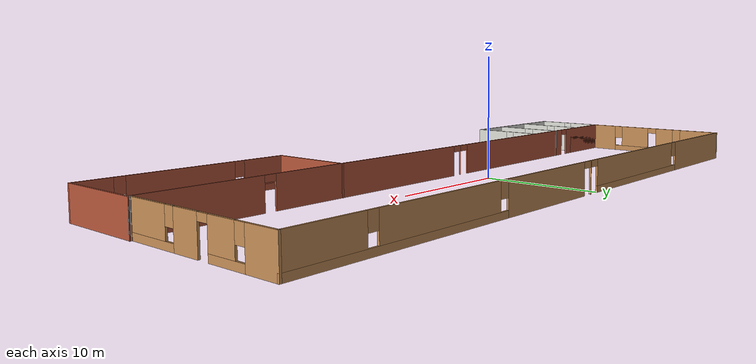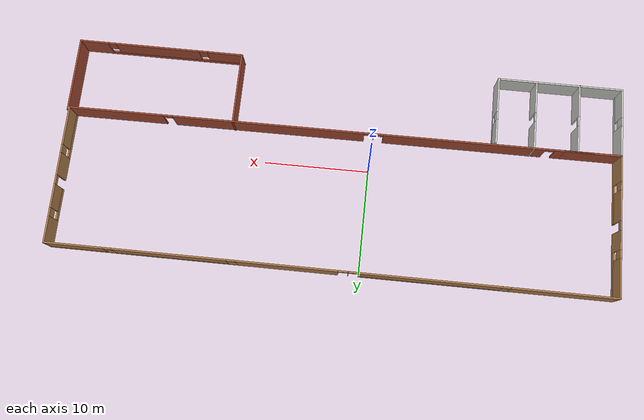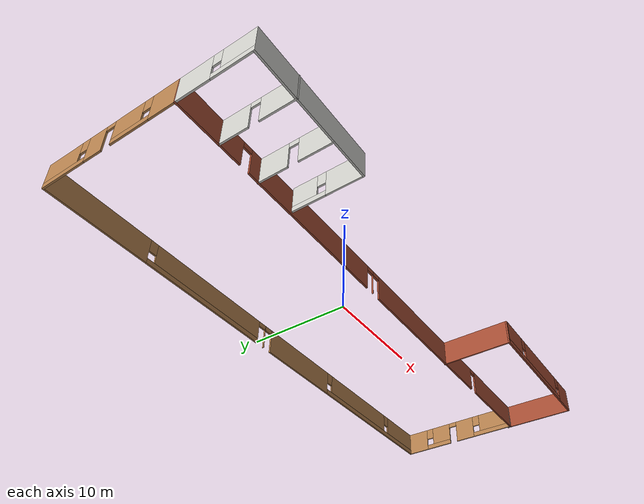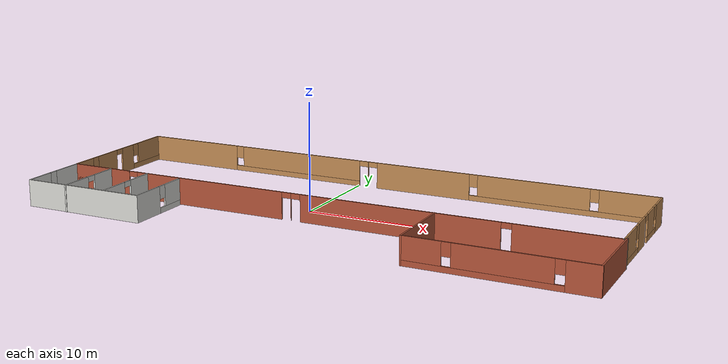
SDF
<?xml version='1.0'?>
<sdf version='1.7'>
  <model name='restaurant'>
    <pose>2.79043 0.081563 0 0 -0 0</pose>
    <link name='Wall_10'>
      <collision name='Wall_10_Collision'>
        <geometry>
          <box>
            <size>12 0.15 2.5</size>
          </box>
        </geometry>
        <pose>0 0 1.25 0 -0 0</pose>
      </collision>
      <visual name='Wall_10_Visual'>
        <pose>0 0 1.25 0 -0 0</pose>
        <geometry>
          <box>
            <size>12 0.15 2.5</size>
          </box>
        </geometry>
        <material>
          <script>
            <uri>file://media/materials/scripts/gazebo.material</uri>
            <name>Gazebo/CeilingTiled</name>
          </script>
          <ambient>1 0.764706 0.305882 1</ambient>
        </material>
        <meta>
          <layer>0</layer>
        </meta>
      </visual>
      <pose>-20.4579 -9.95516 0 0 -0 0</pose>
    </link>
    <link name='Wall_11'>
      <pose>-14.5329 -6.78016 0 0 -0 1.5708</pose>
      <visual name='Wall_11_Visual_0'>
        <pose>-1.5565 0 1.25 0 -0 0</pose>
        <geometry>
          <box>
            <size>3.38699 0.15 2.5</size>
          </box>
        </geometry>
        <material>
          <script>
            <uri>file://media/materials/scripts/gazebo.material</uri>
            <name>Gazebo/CeilingTiled</name>
          </script>
          <ambient>1 0.764706 0.305882 1</ambient>
        </material>
        <meta>
          <layer>0</layer>
        </meta>
      </visual>
      <collision name='Wall_11_Collision_0'>
        <geometry>
          <box>
            <size>3.38699 0.15 2.5</size>
          </box>
        </geometry>
        <pose>-1.5565 0 1.25 0 -0 0</pose>
      </collision>
      <visual name='Wall_11_Visual_1'>
        <pose>1.6935 0 0.25 0 -0 0</pose>
        <geometry>
          <box>
            <size>3.11301 0.15 0.5</size>
          </box>
        </geometry>
        <material>
          <script>
            <uri>file://media/materials/scripts/gazebo.material</uri>
            <name>Gazebo/CeilingTiled</name>
          </script>
          <ambient>1 0.764706 0.305882 1</ambient>
        </material>
        <meta>
          <layer>0</layer>
        </meta>
      </visual>
      <collision name='Wall_11_Collision_1'>
        <geometry>
          <box>
            <size>3.11301 0.15 0.5</size>
          </box>
        </geometry>
        <pose>1.6935 0 0.25 0 -0 0</pose>
      </collision>
      <visual name='Wall_11_Visual_2'>
        <pose>2.0935 0 1.5 0 -0 0</pose>
        <geometry>
          <box>
            <size>2.31301 0.15 2</size>
          </box>
        </geometry>
        <material>
          <script>
            <uri>file://media/materials/scripts/gazebo.material</uri>
            <name>Gazebo/CeilingTiled</name>
          </script>
          <ambient>1 0.764706 0.305882 1</ambient>
        </material>
        <meta>
          <layer>0</layer>
        </meta>
      </visual>
      <collision name='Wall_11_Collision_2'>
        <geometry>
          <box>
            <size>2.31301 0.15 2</size>
          </box>
        </geometry>
        <pose>2.0935 0 1.5 0 -0 0</pose>
      </collision>
      <visual name='Wall_11_Visual_3'>
        <pose>0.536991 0 1.9 0 -0 0</pose>
        <geometry>
          <box>
            <size>0.8 0.15 1.2</size>
          </box>
        </geometry>
        <material>
          <script>
            <uri>file://media/materials/scripts/gazebo.material</uri>
            <name>Gazebo/CeilingTiled</name>
          </script>
          <ambient>1 0.764706 0.305882 1</ambient>
        </material>
        <meta>
          <layer>0</layer>
        </meta>
      </visual>
      <collision name='Wall_11_Collision_3'>
        <geometry>
          <box>
            <size>0.8 0.15 1.2</size>
          </box>
        </geometry>
        <pose>0.536991 0 1.9 0 -0 0</pose>
      </collision>
    </link>
    <link name='Wall_13'>
      <collision name='Wall_13_Collision'>
        <geometry>
          <box>
            <size>0.414926 0.15 2.5</size>
          </box>
        </geometry>
        <pose>0 0 1.25 0 -0 0</pose>
      </collision>
      <visual name='Wall_13_Visual'>
        <pose>0 0 1.25 0 -0 0</pose>
        <geometry>
          <box>
            <size>0.414926 0.15 2.5</size>
          </box>
        </geometry>
        <material>
          <script>
            <uri>file://media/materials/scripts/gazebo.material</uri>
            <name>Gazebo/Grey</name>
          </script>
          <ambient>1 1 1 1</ambient>
        </material>
        <meta>
          <layer>0</layer>
        </meta>
      </visual>
      <pose>26.2861 -2.99211 0 0 -0 1.02256</pose>
    </link>
    <link name='Wall_14'>
      <collision name='Wall_14_Collision'>
        <geometry>
          <box>
            <size>7.25 0.15 2.5</size>
          </box>
        </geometry>
        <pose>0 0 1.25 0 -0 0</pose>
      </collision>
      <visual name='Wall_14_Visual'>
        <pose>0 0 1.25 0 -0 0</pose>
        <geometry>
          <box>
            <size>7.25 0.15 2.5</size>
          </box>
        </geometry>
        <material>
          <script>
            <uri>file://media/materials/scripts/gazebo.material</uri>
            <name>Gazebo/Bricks</name>
          </script>
          <ambient>0.996078 0.47451 0.0196078 1</ambient>
        </material>
        <meta>
          <layer>0</layer>
        </meta>
      </visual>
      <pose>26.3552 -6.42906 0 0 -0 -1.5708</pose>
    </link>
    <link name='Wall_15'>
      <pose>18.4302 -9.97906 0 0 -0 3.14159</pose>
      <visual name='Wall_15_Visual_0'>
        <pose>-6.61611 0 1.25 0 -0 0</pose>
        <geometry>
          <box>
            <size>2.76777 0.15 2.5</size>
          </box>
        </geometry>
        <material>
          <script>
            <uri>file://media/materials/scripts/gazebo.material</uri>
            <name>Gazebo/Bricks</name>
          </script>
          <ambient>0.996078 0.47451 0.0196078 1</ambient>
        </material>
        <meta>
          <layer>0</layer>
        </meta>
      </visual>
      <collision name='Wall_15_Collision_0'>
        <geometry>
          <box>
            <size>2.76777 0.15 2.5</size>
          </box>
        </geometry>
        <pose>-6.61611 0 1.25 0 -0 0</pose>
      </collision>
      <visual name='Wall_15_Visual_1'>
        <pose>1.38389 0 0.25 0 -0 0</pose>
        <geometry>
          <box>
            <size>13.2322 0.15 0.5</size>
          </box>
        </geometry>
        <material>
          <script>
            <uri>file://media/materials/scripts/gazebo.material</uri>
            <name>Gazebo/Bricks</name>
          </script>
          <ambient>0.996078 0.47451 0.0196078 1</ambient>
        </material>
        <meta>
          <layer>0</layer>
        </meta>
      </visual>
      <collision name='Wall_15_Collision_1'>
        <geometry>
          <box>
            <size>13.2322 0.15 0.5</size>
          </box>
        </geometry>
        <pose>1.38389 0 0.25 0 -0 0</pose>
      </collision>
      <visual name='Wall_15_Visual_2'>
        <pose>-0.347226 0 1.5 0 -0 0</pose>
        <geometry>
          <box>
            <size>8.17 0.15 2</size>
          </box>
        </geometry>
        <material>
          <script>
            <uri>file://media/materials/scripts/gazebo.material</uri>
            <name>Gazebo/Bricks</name>
          </script>
          <ambient>0.996078 0.47451 0.0196078 1</ambient>
        </material>
        <meta>
          <layer>0</layer>
        </meta>
      </visual>
      <collision name='Wall_15_Collision_2'>
        <geometry>
          <box>
            <size>8.17 0.15 2</size>
          </box>
        </geometry>
        <pose>-0.347226 0 1.5 0 -0 0</pose>
      </collision>
      <visual name='Wall_15_Visual_3'>
        <pose>6.26889 0 1.5 0 -0 0</pose>
        <geometry>
          <box>
            <size>3.46223 0.15 2</size>
          </box>
        </geometry>
        <material>
          <script>
            <uri>file://media/materials/scripts/gazebo.material</uri>
            <name>Gazebo/Bricks</name>
          </script>
          <ambient>0.996078 0.47451 0.0196078 1</ambient>
        </material>
        <meta>
          <layer>0</layer>
        </meta>
      </visual>
      <collision name='Wall_15_Collision_3'>
        <geometry>
          <box>
            <size>3.46223 0.15 2</size>
          </box>
        </geometry>
        <pose>6.26889 0 1.5 0 -0 0</pose>
      </collision>
      <visual name='Wall_15_Visual_4'>
        <pose>-4.83223 0 1.9 0 -0 0</pose>
        <geometry>
          <box>
            <size>0.8 0.15 1.2</size>
          </box>
        </geometry>
        <material>
          <script>
            <uri>file://media/materials/scripts/gazebo.material</uri>
            <name>Gazebo/Bricks</name>
          </script>
          <ambient>0.996078 0.47451 0.0196078 1</ambient>
        </material>
        <meta>
          <layer>0</layer>
        </meta>
      </visual>
      <collision name='Wall_15_Collision_4'>
        <geometry>
          <box>
            <size>0.8 0.15 1.2</size>
          </box>
        </geometry>
        <pose>-4.83223 0 1.9 0 -0 0</pose>
      </collision>
      <visual name='Wall_15_Visual_5'>
        <pose>4.13777 0 1.9 0 -0 0</pose>
        <geometry>
          <box>
            <size>0.8 0.15 1.2</size>
          </box>
        </geometry>
        <material>
          <script>
            <uri>file://media/materials/scripts/gazebo.material</uri>
            <name>Gazebo/Bricks</name>
          </script>
          <ambient>0.996078 0.47451 0.0196078 1</ambient>
        </material>
        <meta>
          <layer>0</layer>
        </meta>
      </visual>
      <collision name='Wall_15_Collision_5'>
        <geometry>
          <box>
            <size>0.8 0.15 1.2</size>
          </box>
        </geometry>
        <pose>4.13777 0 1.9 0 -0 0</pose>
      </collision>
    </link>
    <link name='Wall_16'>
      <collision name='Wall_16_Collision'>
        <geometry>
          <box>
            <size>7 0.15 2.5</size>
          </box>
        </geometry>
        <pose>0 0 1.25 0 -0 0</pose>
      </collision>
      <visual name='Wall_16_Visual'>
        <pose>0 0 1.25 0 -0 0</pose>
        <geometry>
          <box>
            <size>7 0.15 2.5</size>
          </box>
        </geometry>
        <material>
          <script>
            <uri>file://media/materials/scripts/gazebo.material</uri>
            <name>Gazebo/Bricks</name>
          </script>
          <ambient>0.996078 0.47451 0.0196078 1</ambient>
        </material>
        <meta>
          <layer>0</layer>
        </meta>
      </visual>
      <pose>10.5052 -6.55406 0 0 -0 1.5708</pose>
    </link>
    <link name='Wall_18'>
      <pose>-18.1702 -6.57581 0 0 -0 -1.5708</pose>
      <visual name='Wall_18_Visual_0'>
        <pose>-1.9755 0 1.25 0 -0 0</pose>
        <geometry>
          <box>
            <size>2.799 0.15 2.5</size>
          </box>
        </geometry>
        <material>
          <script>
            <uri>file://media/materials/scripts/gazebo.material</uri>
            <name>Gazebo/CeilingTiled</name>
          </script>
          <ambient>1 0.764706 0.305882 1</ambient>
        </material>
        <meta>
          <layer>0</layer>
        </meta>
      </visual>
      <collision name='Wall_18_Collision_0'>
        <geometry>
          <box>
            <size>2.799 0.15 2.5</size>
          </box>
        </geometry>
        <pose>-1.9755 0 1.25 0 -0 0</pose>
      </collision>
      <visual name='Wall_18_Visual_1'>
        <pose>1.8495 0 1.25 0 -0 0</pose>
        <geometry>
          <box>
            <size>3.051 0.15 2.5</size>
          </box>
        </geometry>
        <material>
          <script>
            <uri>file://media/materials/scripts/gazebo.material</uri>
            <name>Gazebo/CeilingTiled</name>
          </script>
          <ambient>1 0.764706 0.305882 1</ambient>
        </material>
        <meta>
          <layer>0</layer>
        </meta>
      </visual>
      <collision name='Wall_18_Collision_1'>
        <geometry>
          <box>
            <size>3.051 0.15 2.5</size>
          </box>
        </geometry>
        <pose>1.8495 0 1.25 0 -0 0</pose>
      </collision>
      <visual name='Wall_18_Visual_2'>
        <pose>-0.126 0 2.25 0 -0 0</pose>
        <geometry>
          <box>
            <size>0.9 0.15 0.5</size>
          </box>
        </geometry>
        <material>
          <script>
            <uri>file://media/materials/scripts/gazebo.material</uri>
            <name>Gazebo/CeilingTiled</name>
          </script>
          <ambient>1 0.764706 0.305882 1</ambient>
        </material>
        <meta>
          <layer>0</layer>
        </meta>
      </visual>
      <collision name='Wall_18_Collision_2'>
        <geometry>
          <box>
            <size>0.9 0.15 0.5</size>
          </box>
        </geometry>
        <pose>-0.126 0 2.25 0 -0 0</pose>
      </collision>
    </link>
    <link name='Wall_22'>
      <pose>-22.2964 -6.69484 0 0 -0 -1.5708</pose>
      <visual name='Wall_22_Visual_0'>
        <pose>-2.05485 0 1.25 0 -0 0</pose>
        <geometry>
          <box>
            <size>2.6403 0.15 2.5</size>
          </box>
        </geometry>
        <material>
          <script>
            <uri>file://media/materials/scripts/gazebo.material</uri>
            <name>Gazebo/CeilingTiled</name>
          </script>
          <ambient>1 0.764706 0.305882 1</ambient>
        </material>
        <meta>
          <layer>0</layer>
        </meta>
      </visual>
      <collision name='Wall_22_Collision_0'>
        <geometry>
          <box>
            <size>2.6403 0.15 2.5</size>
          </box>
        </geometry>
        <pose>-2.05485 0 1.25 0 -0 0</pose>
      </collision>
      <visual name='Wall_22_Visual_1'>
        <pose>1.77015 0 1.25 0 -0 0</pose>
        <geometry>
          <box>
            <size>3.2097 0.15 2.5</size>
          </box>
        </geometry>
        <material>
          <script>
            <uri>file://media/materials/scripts/gazebo.material</uri>
            <name>Gazebo/CeilingTiled</name>
          </script>
          <ambient>1 0.764706 0.305882 1</ambient>
        </material>
        <meta>
          <layer>0</layer>
        </meta>
      </visual>
      <collision name='Wall_22_Collision_1'>
        <geometry>
          <box>
            <size>3.2097 0.15 2.5</size>
          </box>
        </geometry>
        <pose>1.77015 0 1.25 0 -0 0</pose>
      </collision>
      <visual name='Wall_22_Visual_2'>
        <pose>-0.2847 0 2.25 0 -0 0</pose>
        <geometry>
          <box>
            <size>0.9 0.15 0.5</size>
          </box>
        </geometry>
        <material>
          <script>
            <uri>file://media/materials/scripts/gazebo.material</uri>
            <name>Gazebo/CeilingTiled</name>
          </script>
          <ambient>1 0.764706 0.305882 1</ambient>
        </material>
        <meta>
          <layer>0</layer>
        </meta>
      </visual>
      <collision name='Wall_22_Collision_2'>
        <geometry>
          <box>
            <size>0.9 0.15 0.5</size>
          </box>
        </geometry>
        <pose>-0.2847 0 2.25 0 -0 0</pose>
      </collision>
    </link>
    <link name='Wall_5'>
      <pose>-26.3829 3.31984 0 0 -0 1.5708</pose>
      <visual name='Wall_5_Visual_0'>
        <pose>-5.4842 0 1.25 0 -0 0</pose>
        <geometry>
          <box>
            <size>2.5316 0.15 2.5</size>
          </box>
        </geometry>
        <material>
          <script>
            <uri>file://media/materials/scripts/gazebo.material</uri>
            <name>Gazebo/Wood</name>
          </script>
          <ambient>0.760784 0.662745 0.627451 1</ambient>
        </material>
        <meta>
          <layer>0</layer>
        </meta>
      </visual>
      <collision name='Wall_5_Collision_0'>
        <geometry>
          <box>
            <size>2.5316 0.15 2.5</size>
          </box>
        </geometry>
        <pose>-5.4842 0 1.25 0 -0 0</pose>
      </collision>
      <visual name='Wall_5_Visual_1'>
        <pose>1.30897 0 1.25 0 -0 0</pose>
        <geometry>
          <box>
            <size>1.79996 0.15 2.5</size>
          </box>
        </geometry>
        <material>
          <script>
            <uri>file://media/materials/scripts/gazebo.material</uri>
            <name>Gazebo/Wood</name>
          </script>
          <ambient>0.760784 0.662745 0.627451 1</ambient>
        </material>
        <meta>
          <layer>0</layer>
        </meta>
      </visual>
      <collision name='Wall_5_Collision_1'>
        <geometry>
          <box>
            <size>1.79996 0.15 2.5</size>
          </box>
        </geometry>
        <pose>1.30897 0 1.25 0 -0 0</pose>
      </collision>
      <visual name='Wall_5_Visual_2'>
        <pose>-2.3547 0 0.25 0 -0 0</pose>
        <geometry>
          <box>
            <size>3.72739 0.15 0.5</size>
          </box>
        </geometry>
        <material>
          <script>
            <uri>file://media/materials/scripts/gazebo.material</uri>
            <name>Gazebo/Wood</name>
          </script>
          <ambient>0.760784 0.662745 0.627451 1</ambient>
        </material>
        <meta>
          <layer>0</layer>
        </meta>
      </visual>
      <collision name='Wall_5_Collision_2'>
        <geometry>
          <box>
            <size>3.72739 0.15 0.5</size>
          </box>
        </geometry>
        <pose>-2.3547 0 0.25 0 -0 0</pose>
      </collision>
      <visual name='Wall_5_Visual_3'>
        <pose>4.47947 0 0.25 0 -0 0</pose>
        <geometry>
          <box>
            <size>4.54105 0.15 0.5</size>
          </box>
        </geometry>
        <material>
          <script>
            <uri>file://media/materials/scripts/gazebo.material</uri>
            <name>Gazebo/Wood</name>
          </script>
          <ambient>0.760784 0.662745 0.627451 1</ambient>
        </material>
        <meta>
          <layer>0</layer>
        </meta>
      </visual>
      <collision name='Wall_5_Collision_3'>
        <geometry>
          <box>
            <size>4.54105 0.15 0.5</size>
          </box>
        </geometry>
        <pose>4.47947 0 0.25 0 -0 0</pose>
      </collision>
      <visual name='Wall_5_Visual_4'>
        <pose>-1.9547 0 1.5 0 -0 0</pose>
        <geometry>
          <box>
            <size>2.92739 0.15 2</size>
          </box>
        </geometry>
        <material>
          <script>
            <uri>file://media/materials/scripts/gazebo.material</uri>
            <name>Gazebo/Wood</name>
          </script>
          <ambient>0.760784 0.662745 0.627451 1</ambient>
        </material>
        <meta>
          <layer>0</layer>
        </meta>
      </visual>
      <collision name='Wall_5_Collision_4'>
        <geometry>
          <box>
            <size>2.92739 0.15 2</size>
          </box>
        </geometry>
        <pose>-1.9547 0 1.5 0 -0 0</pose>
      </collision>
      <visual name='Wall_5_Visual_5'>
        <pose>-1.9547 0 1.5 0 -0 0</pose>
        <geometry>
          <box>
            <size>2.92739 0.15 2</size>
          </box>
        </geometry>
        <material>
          <script>
            <uri>file://media/materials/scripts/gazebo.material</uri>
            <name>Gazebo/Wood</name>
          </script>
          <ambient>0.760784 0.662745 0.627451 1</ambient>
        </material>
        <meta>
          <layer>0</layer>
        </meta>
      </visual>
      <collision name='Wall_5_Collision_5'>
        <geometry>
          <box>
            <size>2.92739 0.15 2</size>
          </box>
        </geometry>
        <pose>-1.9547 0 1.5 0 -0 0</pose>
      </collision>
      <visual name='Wall_5_Visual_6'>
        <pose>4.87948 0 1.5 0 -0 0</pose>
        <geometry>
          <box>
            <size>3.74105 0.15 2</size>
          </box>
        </geometry>
        <material>
          <script>
            <uri>file://media/materials/scripts/gazebo.material</uri>
            <name>Gazebo/Wood</name>
          </script>
          <ambient>0.760784 0.662745 0.627451 1</ambient>
        </material>
        <meta>
          <layer>0</layer>
        </meta>
      </visual>
      <collision name='Wall_5_Collision_6'>
        <geometry>
          <box>
            <size>3.74105 0.15 2</size>
          </box>
        </geometry>
        <pose>4.87948 0 1.5 0 -0 0</pose>
      </collision>
      <visual name='Wall_5_Visual_7'>
        <pose>-3.8184 0 1.9 0 -0 0</pose>
        <geometry>
          <box>
            <size>0.8 0.15 1.2</size>
          </box>
        </geometry>
        <material>
          <script>
            <uri>file://media/materials/scripts/gazebo.material</uri>
            <name>Gazebo/Wood</name>
          </script>
          <ambient>0.760784 0.662745 0.627451 1</ambient>
        </material>
        <meta>
          <layer>0</layer>
        </meta>
      </visual>
      <collision name='Wall_5_Collision_7'>
        <geometry>
          <box>
            <size>0.8 0.15 1.2</size>
          </box>
        </geometry>
        <pose>-3.8184 0 1.9 0 -0 0</pose>
      </collision>
      <visual name='Wall_5_Visual_8'>
        <pose>2.60895 0 1.9 0 -0 0</pose>
        <geometry>
          <box>
            <size>0.8 0.15 1.2</size>
          </box>
        </geometry>
        <material>
          <script>
            <uri>file://media/materials/scripts/gazebo.material</uri>
            <name>Gazebo/Wood</name>
          </script>
          <ambient>0.760784 0.662745 0.627451 1</ambient>
        </material>
        <meta>
          <layer>0</layer>
        </meta>
      </visual>
      <collision name='Wall_5_Collision_8'>
        <geometry>
          <box>
            <size>0.8 0.15 1.2</size>
          </box>
        </geometry>
        <pose>2.60895 0 1.9 0 -0 0</pose>
      </collision>
      <visual name='Wall_5_Visual_9'>
        <pose>-0.041009 0 2.25 0 -0 0</pose>
        <geometry>
          <box>
            <size>0.9 0.15 0.5</size>
          </box>
        </geometry>
        <material>
          <script>
            <uri>file://media/materials/scripts/gazebo.material</uri>
            <name>Gazebo/Wood</name>
          </script>
          <ambient>0.760784 0.662745 0.627451 1</ambient>
        </material>
        <meta>
          <layer>0</layer>
        </meta>
      </visual>
      <collision name='Wall_5_Collision_9'>
        <geometry>
          <box>
            <size>0.9 0.15 0.5</size>
          </box>
        </geometry>
        <pose>-0.041009 0 2.25 0 -0 0</pose>
      </collision>
      <visual name='Wall_5_Visual_10'>
        <pose>-0.041009 0 2.25 0 -0 0</pose>
        <geometry>
          <box>
            <size>0.9 0.15 0.5</size>
          </box>
        </geometry>
        <material>
          <script>
            <uri>file://media/materials/scripts/gazebo.material</uri>
            <name>Gazebo/Wood</name>
          </script>
          <ambient>0.760784 0.662745 0.627451 1</ambient>
        </material>
        <meta>
          <layer>0</layer>
        </meta>
      </visual>
      <collision name='Wall_5_Collision_10'>
        <geometry>
          <box>
            <size>0.9 0.15 0.5</size>
          </box>
        </geometry>
        <pose>-0.041009 0 2.25 0 -0 0</pose>
      </collision>
    </link>
    <link name='Wall_6'>
      <pose>-0.082907 9.99484 0 0 -0 0</pose>
      <visual name='Wall_6_Visual_0'>
        <pose>-21.4488 0 1.25 0 -0 0</pose>
        <geometry>
          <box>
            <size>9.8523 0.15 2.5</size>
          </box>
        </geometry>
        <material>
          <script>
            <uri>file://media/materials/scripts/gazebo.material</uri>
            <name>Gazebo/Wood</name>
          </script>
          <ambient>0.760784 0.662745 0.627451 1</ambient>
        </material>
        <meta>
          <layer>0</layer>
        </meta>
      </visual>
      <collision name='Wall_6_Collision_0'>
        <geometry>
          <box>
            <size>9.8523 0.15 2.5</size>
          </box>
        </geometry>
        <pose>-21.4488 0 1.25 0 -0 0</pose>
      </collision>
      <visual name='Wall_6_Visual_1'>
        <pose>-1.7017 0 1.25 0 -0 0</pose>
        <geometry>
          <box>
            <size>0.066 0.15 2.5</size>
          </box>
        </geometry>
        <material>
          <script>
            <uri>file://media/materials/scripts/gazebo.material</uri>
            <name>Gazebo/Wood</name>
          </script>
          <ambient>0.760784 0.662745 0.627451 1</ambient>
        </material>
        <meta>
          <layer>0</layer>
        </meta>
      </visual>
      <collision name='Wall_6_Collision_1'>
        <geometry>
          <box>
            <size>0.066 0.15 2.5</size>
          </box>
        </geometry>
        <pose>-1.7017 0 1.25 0 -0 0</pose>
      </collision>
      <visual name='Wall_6_Visual_2'>
        <pose>3.9468 0 1.25 0 -0 0</pose>
        <geometry>
          <box>
            <size>9.431 0.15 2.5</size>
          </box>
        </geometry>
        <material>
          <script>
            <uri>file://media/materials/scripts/gazebo.material</uri>
            <name>Gazebo/Wood</name>
          </script>
          <ambient>0.760784 0.662745 0.627451 1</ambient>
        </material>
        <meta>
          <layer>0</layer>
        </meta>
      </visual>
      <collision name='Wall_6_Collision_2'>
        <geometry>
          <box>
            <size>9.431 0.15 2.5</size>
          </box>
        </geometry>
        <pose>3.9468 0 1.25 0 -0 0</pose>
      </collision>
      <visual name='Wall_6_Visual_3'>
        <pose>-9.5787 0 0.25 0 -0 0</pose>
        <geometry>
          <box>
            <size>13.888 0.15 0.5</size>
          </box>
        </geometry>
        <material>
          <script>
            <uri>file://media/materials/scripts/gazebo.material</uri>
            <name>Gazebo/Wood</name>
          </script>
          <ambient>0.760784 0.662745 0.627451 1</ambient>
        </material>
        <meta>
          <layer>0</layer>
        </meta>
      </visual>
      <collision name='Wall_6_Collision_3'>
        <geometry>
          <box>
            <size>13.888 0.15 0.5</size>
          </box>
        </geometry>
        <pose>-9.5787 0 0.25 0 -0 0</pose>
      </collision>
      <visual name='Wall_6_Visual_4'>
        <pose>17.5187 0 0.25 0 -0 0</pose>
        <geometry>
          <box>
            <size>17.7127 0.15 0.5</size>
          </box>
        </geometry>
        <material>
          <script>
            <uri>file://media/materials/scripts/gazebo.material</uri>
            <name>Gazebo/Wood</name>
          </script>
          <ambient>0.760784 0.662745 0.627451 1</ambient>
        </material>
        <meta>
          <layer>0</layer>
        </meta>
      </visual>
      <collision name='Wall_6_Collision_4'>
        <geometry>
          <box>
            <size>17.7127 0.15 0.5</size>
          </box>
        </geometry>
        <pose>17.5187 0 0.25 0 -0 0</pose>
      </collision>
      <visual name='Wall_6_Visual_5'>
        <pose>-9.1787 0 1.5 0 -0 0</pose>
        <geometry>
          <box>
            <size>13.088 0.15 2</size>
          </box>
        </geometry>
        <material>
          <script>
            <uri>file://media/materials/scripts/gazebo.material</uri>
            <name>Gazebo/Wood</name>
          </script>
          <ambient>0.760784 0.662745 0.627451 1</ambient>
        </material>
        <meta>
          <layer>0</layer>
        </meta>
      </visual>
      <collision name='Wall_6_Collision_5'>
        <geometry>
          <box>
            <size>13.088 0.15 2</size>
          </box>
        </geometry>
        <pose>-9.1787 0 1.5 0 -0 0</pose>
      </collision>
      <visual name='Wall_6_Visual_6'>
        <pose>-9.1787 0 1.5 0 -0 0</pose>
        <geometry>
          <box>
            <size>13.088 0.15 2</size>
          </box>
        </geometry>
        <material>
          <script>
            <uri>file://media/materials/scripts/gazebo.material</uri>
            <name>Gazebo/Wood</name>
          </script>
          <ambient>0.760784 0.662745 0.627451 1</ambient>
        </material>
        <meta>
          <layer>0</layer>
        </meta>
      </visual>
      <collision name='Wall_6_Collision_6'>
        <geometry>
          <box>
            <size>13.088 0.15 2</size>
          </box>
        </geometry>
        <pose>-9.1787 0 1.5 0 -0 0</pose>
      </collision>
      <visual name='Wall_6_Visual_7'>
        <pose>14.7548 0 1.5 0 -0 0</pose>
        <geometry>
          <box>
            <size>10.585 0.15 2</size>
          </box>
        </geometry>
        <material>
          <script>
            <uri>file://media/materials/scripts/gazebo.material</uri>
            <name>Gazebo/Wood</name>
          </script>
          <ambient>0.760784 0.662745 0.627451 1</ambient>
        </material>
        <meta>
          <layer>0</layer>
        </meta>
      </visual>
      <collision name='Wall_6_Collision_7'>
        <geometry>
          <box>
            <size>10.585 0.15 2</size>
          </box>
        </geometry>
        <pose>14.7548 0 1.5 0 -0 0</pose>
      </collision>
      <visual name='Wall_6_Visual_8'>
        <pose>23.6111 0 1.5 0 -0 0</pose>
        <geometry>
          <box>
            <size>5.5277 0.15 2</size>
          </box>
        </geometry>
        <material>
          <script>
            <uri>file://media/materials/scripts/gazebo.material</uri>
            <name>Gazebo/Wood</name>
          </script>
          <ambient>0.760784 0.662745 0.627451 1</ambient>
        </material>
        <meta>
          <layer>0</layer>
        </meta>
      </visual>
      <collision name='Wall_6_Collision_8'>
        <geometry>
          <box>
            <size>5.5277 0.15 2</size>
          </box>
        </geometry>
        <pose>23.6111 0 1.5 0 -0 0</pose>
      </collision>
      <visual name='Wall_6_Visual_9'>
        <pose>-16.1227 0 1.9 0 -0 0</pose>
        <geometry>
          <box>
            <size>0.8 0.15 1.2</size>
          </box>
        </geometry>
        <material>
          <script>
            <uri>file://media/materials/scripts/gazebo.material</uri>
            <name>Gazebo/Wood</name>
          </script>
          <ambient>0.760784 0.662745 0.627451 1</ambient>
        </material>
        <meta>
          <layer>0</layer>
        </meta>
      </visual>
      <collision name='Wall_6_Collision_9'>
        <geometry>
          <box>
            <size>0.8 0.15 1.2</size>
          </box>
        </geometry>
        <pose>-16.1227 0 1.9 0 -0 0</pose>
      </collision>
      <visual name='Wall_6_Visual_10'>
        <pose>9.0623 0 1.9 0 -0 0</pose>
        <geometry>
          <box>
            <size>0.8 0.15 1.2</size>
          </box>
        </geometry>
        <material>
          <script>
            <uri>file://media/materials/scripts/gazebo.material</uri>
            <name>Gazebo/Wood</name>
          </script>
          <ambient>0.760784 0.662745 0.627451 1</ambient>
        </material>
        <meta>
          <layer>0</layer>
        </meta>
      </visual>
      <collision name='Wall_6_Collision_10'>
        <geometry>
          <box>
            <size>0.8 0.15 1.2</size>
          </box>
        </geometry>
        <pose>9.0623 0 1.9 0 -0 0</pose>
      </collision>
      <visual name='Wall_6_Visual_11'>
        <pose>20.4473 0 1.9 0 -0 0</pose>
        <geometry>
          <box>
            <size>0.8 0.15 1.2</size>
          </box>
        </geometry>
        <material>
          <script>
            <uri>file://media/materials/scripts/gazebo.material</uri>
            <name>Gazebo/Wood</name>
          </script>
          <ambient>0.760784 0.662745 0.627451 1</ambient>
        </material>
        <meta>
          <layer>0</layer>
        </meta>
      </visual>
      <collision name='Wall_6_Collision_11'>
        <geometry>
          <box>
            <size>0.8 0.15 1.2</size>
          </box>
        </geometry>
        <pose>20.4473 0 1.9 0 -0 0</pose>
      </collision>
      <visual name='Wall_6_Visual_12'>
        <pose>-1.2187 0 2.25 0 -0 0</pose>
        <geometry>
          <box>
            <size>0.9 0.15 0.5</size>
          </box>
        </geometry>
        <material>
          <script>
            <uri>file://media/materials/scripts/gazebo.material</uri>
            <name>Gazebo/Wood</name>
          </script>
          <ambient>0.760784 0.662745 0.627451 1</ambient>
        </material>
        <meta>
          <layer>0</layer>
        </meta>
      </visual>
      <collision name='Wall_6_Collision_12'>
        <geometry>
          <box>
            <size>0.9 0.15 0.5</size>
          </box>
        </geometry>
        <pose>-1.2187 0 2.25 0 -0 0</pose>
      </collision>
      <visual name='Wall_6_Visual_13'>
        <pose>-2.1847 0 2.25 0 -0 0</pose>
        <geometry>
          <box>
            <size>0.9 0.15 0.5</size>
          </box>
        </geometry>
        <material>
          <script>
            <uri>file://media/materials/scripts/gazebo.material</uri>
            <name>Gazebo/Wood</name>
          </script>
          <ambient>0.760784 0.662745 0.627451 1</ambient>
        </material>
        <meta>
          <layer>0</layer>
        </meta>
      </visual>
      <collision name='Wall_6_Collision_13'>
        <geometry>
          <box>
            <size>0.9 0.15 0.5</size>
          </box>
        </geometry>
        <pose>-2.1847 0 2.25 0 -0 0</pose>
      </collision>
      <visual name='Wall_6_Visual_14'>
        <pose>-2.1847 0 2.25 0 -0 0</pose>
        <geometry>
          <box>
            <size>0.9 0.15 0.5</size>
          </box>
        </geometry>
        <material>
          <script>
            <uri>file://media/materials/scripts/gazebo.material</uri>
            <name>Gazebo/Wood</name>
          </script>
          <ambient>0.760784 0.662745 0.627451 1</ambient>
        </material>
        <meta>
          <layer>0</layer>
        </meta>
      </visual>
      <collision name='Wall_6_Collision_14'>
        <geometry>
          <box>
            <size>0.9 0.15 0.5</size>
          </box>
        </geometry>
        <pose>-2.1847 0 2.25 0 -0 0</pose>
      </collision>
    </link>
    <link name='Wall_7'>
      <pose>26.2171 3.44484 0 0 -0 -1.5708</pose>
      <visual name='Wall_7_Visual_0'>
        <pose>-5.3615 0 1.25 0 -0 0</pose>
        <geometry>
          <box>
            <size>2.52701 0.15 2.5</size>
          </box>
        </geometry>
        <material>
          <script>
            <uri>file://media/materials/scripts/gazebo.material</uri>
            <name>Gazebo/Wood</name>
          </script>
          <ambient>0.760784 0.662745 0.627451 1</ambient>
        </material>
        <meta>
          <layer>0</layer>
        </meta>
      </visual>
      <collision name='Wall_7_Collision_0'>
        <geometry>
          <box>
            <size>2.52701 0.15 2.5</size>
          </box>
        </geometry>
        <pose>-5.3615 0 1.25 0 -0 0</pose>
      </collision>
      <visual name='Wall_7_Visual_1'>
        <pose>0.950009 0 1.25 0 -0 0</pose>
        <geometry>
          <box>
            <size>2.186 0.15 2.5</size>
          </box>
        </geometry>
        <material>
          <script>
            <uri>file://media/materials/scripts/gazebo.material</uri>
            <name>Gazebo/Wood</name>
          </script>
          <ambient>0.760784 0.662745 0.627451 1</ambient>
        </material>
        <meta>
          <layer>0</layer>
        </meta>
      </visual>
      <collision name='Wall_7_Collision_1'>
        <geometry>
          <box>
            <size>2.186 0.15 2.5</size>
          </box>
        </geometry>
        <pose>0.950009 0 1.25 0 -0 0</pose>
      </collision>
      <visual name='Wall_7_Visual_2'>
        <pose>-2.57049 0 0.25 0 -0 0</pose>
        <geometry>
          <box>
            <size>3.055 0.15 0.5</size>
          </box>
        </geometry>
        <material>
          <script>
            <uri>file://media/materials/scripts/gazebo.material</uri>
            <name>Gazebo/Wood</name>
          </script>
          <ambient>0.760784 0.662745 0.627451 1</ambient>
        </material>
        <meta>
          <layer>0</layer>
        </meta>
      </visual>
      <collision name='Wall_7_Collision_2'>
        <geometry>
          <box>
            <size>3.055 0.15 0.5</size>
          </box>
        </geometry>
        <pose>-2.57049 0 0.25 0 -0 0</pose>
      </collision>
      <visual name='Wall_7_Visual_3'>
        <pose>4.334 0 0.25 0 -0 0</pose>
        <geometry>
          <box>
            <size>4.58199 0.15 0.5</size>
          </box>
        </geometry>
        <material>
          <script>
            <uri>file://media/materials/scripts/gazebo.material</uri>
            <name>Gazebo/Wood</name>
          </script>
          <ambient>0.760784 0.662745 0.627451 1</ambient>
        </material>
        <meta>
          <layer>0</layer>
        </meta>
      </visual>
      <collision name='Wall_7_Collision_3'>
        <geometry>
          <box>
            <size>4.58199 0.15 0.5</size>
          </box>
        </geometry>
        <pose>4.334 0 0.25 0 -0 0</pose>
      </collision>
      <visual name='Wall_7_Visual_4'>
        <pose>-2.17049 0 1.5 0 -0 0</pose>
        <geometry>
          <box>
            <size>2.255 0.15 2</size>
          </box>
        </geometry>
        <material>
          <script>
            <uri>file://media/materials/scripts/gazebo.material</uri>
            <name>Gazebo/Wood</name>
          </script>
          <ambient>0.760784 0.662745 0.627451 1</ambient>
        </material>
        <meta>
          <layer>0</layer>
        </meta>
      </visual>
      <collision name='Wall_7_Collision_4'>
        <geometry>
          <box>
            <size>2.255 0.15 2</size>
          </box>
        </geometry>
        <pose>-2.17049 0 1.5 0 -0 0</pose>
      </collision>
      <visual name='Wall_7_Visual_5'>
        <pose>-2.17049 0 1.5 0 -0 0</pose>
        <geometry>
          <box>
            <size>2.255 0.15 2</size>
          </box>
        </geometry>
        <material>
          <script>
            <uri>file://media/materials/scripts/gazebo.material</uri>
            <name>Gazebo/Wood</name>
          </script>
          <ambient>0.760784 0.662745 0.627451 1</ambient>
        </material>
        <meta>
          <layer>0</layer>
        </meta>
      </visual>
      <collision name='Wall_7_Collision_5'>
        <geometry>
          <box>
            <size>2.255 0.15 2</size>
          </box>
        </geometry>
        <pose>-2.17049 0 1.5 0 -0 0</pose>
      </collision>
      <visual name='Wall_7_Visual_6'>
        <pose>4.734 0 1.5 0 -0 0</pose>
        <geometry>
          <box>
            <size>3.78199 0.15 2</size>
          </box>
        </geometry>
        <material>
          <script>
            <uri>file://media/materials/scripts/gazebo.material</uri>
            <name>Gazebo/Wood</name>
          </script>
          <ambient>0.760784 0.662745 0.627451 1</ambient>
        </material>
        <meta>
          <layer>0</layer>
        </meta>
      </visual>
      <collision name='Wall_7_Collision_6'>
        <geometry>
          <box>
            <size>3.78199 0.15 2</size>
          </box>
        </geometry>
        <pose>4.734 0 1.5 0 -0 0</pose>
      </collision>
      <visual name='Wall_7_Visual_7'>
        <pose>-3.69799 0 1.9 0 -0 0</pose>
        <geometry>
          <box>
            <size>0.8 0.15 1.2</size>
          </box>
        </geometry>
        <material>
          <script>
            <uri>file://media/materials/scripts/gazebo.material</uri>
            <name>Gazebo/Wood</name>
          </script>
          <ambient>0.760784 0.662745 0.627451 1</ambient>
        </material>
        <meta>
          <layer>0</layer>
        </meta>
      </visual>
      <collision name='Wall_7_Collision_7'>
        <geometry>
          <box>
            <size>0.8 0.15 1.2</size>
          </box>
        </geometry>
        <pose>-3.69799 0 1.9 0 -0 0</pose>
      </collision>
      <visual name='Wall_7_Visual_8'>
        <pose>2.44301 0 1.9 0 -0 0</pose>
        <geometry>
          <box>
            <size>0.8 0.15 1.2</size>
          </box>
        </geometry>
        <material>
          <script>
            <uri>file://media/materials/scripts/gazebo.material</uri>
            <name>Gazebo/Wood</name>
          </script>
          <ambient>0.760784 0.662745 0.627451 1</ambient>
        </material>
        <meta>
          <layer>0</layer>
        </meta>
      </visual>
      <collision name='Wall_7_Collision_8'>
        <geometry>
          <box>
            <size>0.8 0.15 1.2</size>
          </box>
        </geometry>
        <pose>2.44301 0 1.9 0 -0 0</pose>
      </collision>
      <visual name='Wall_7_Visual_9'>
        <pose>-0.592991 0 2.25 0 -0 0</pose>
        <geometry>
          <box>
            <size>0.9 0.15 0.5</size>
          </box>
        </geometry>
        <material>
          <script>
            <uri>file://media/materials/scripts/gazebo.material</uri>
            <name>Gazebo/Wood</name>
          </script>
          <ambient>0.760784 0.662745 0.627451 1</ambient>
        </material>
        <meta>
          <layer>0</layer>
        </meta>
      </visual>
      <collision name='Wall_7_Collision_9'>
        <geometry>
          <box>
            <size>0.9 0.15 0.5</size>
          </box>
        </geometry>
        <pose>-0.592991 0 2.25 0 -0 0</pose>
      </collision>
      <visual name='Wall_7_Visual_10'>
        <pose>-0.592991 0 2.25 0 -0 0</pose>
        <geometry>
          <box>
            <size>0.9 0.15 0.5</size>
          </box>
        </geometry>
        <material>
          <script>
            <uri>file://media/materials/scripts/gazebo.material</uri>
            <name>Gazebo/Wood</name>
          </script>
          <ambient>0.760784 0.662745 0.627451 1</ambient>
        </material>
        <meta>
          <layer>0</layer>
        </meta>
      </visual>
      <collision name='Wall_7_Collision_10'>
        <geometry>
          <box>
            <size>0.9 0.15 0.5</size>
          </box>
        </geometry>
        <pose>-0.592991 0 2.25 0 -0 0</pose>
      </collision>
    </link>
    <link name='Wall_8'>
      <pose>-0.082907 -3.23016 0 0 -0 -3.13684</pose>
      <visual name='Wall_8_Visual_0'>
        <pose>-21.8254 0 1.25 0 -0 0</pose>
        <geometry>
          <box>
            <size>9.09973 0.15 2.5</size>
          </box>
        </geometry>
        <material>
          <script>
            <uri>file://media/materials/scripts/gazebo.material</uri>
            <name>Gazebo/Bricks</name>
          </script>
          <ambient>0.996078 0.47451 0.0196078 1</ambient>
        </material>
        <meta>
          <layer>0</layer>
        </meta>
      </visual>
      <collision name='Wall_8_Collision_0'>
        <geometry>
          <box>
            <size>9.09973 0.15 2.5</size>
          </box>
        </geometry>
        <pose>-21.8254 0 1.25 0 -0 0</pose>
      </collision>
      <visual name='Wall_8_Visual_1'>
        <pose>-7.20486 0 1.25 0 -0 0</pose>
        <geometry>
          <box>
            <size>18.3414 0.15 2.5</size>
          </box>
        </geometry>
        <material>
          <script>
            <uri>file://media/materials/scripts/gazebo.material</uri>
            <name>Gazebo/Bricks</name>
          </script>
          <ambient>0.996078 0.47451 0.0196078 1</ambient>
        </material>
        <meta>
          <layer>0</layer>
        </meta>
      </visual>
      <collision name='Wall_8_Collision_1'>
        <geometry>
          <box>
            <size>18.3414 0.15 2.5</size>
          </box>
        </geometry>
        <pose>-7.20486 0 1.25 0 -0 0</pose>
      </collision>
      <visual name='Wall_8_Visual_2'>
        <pose>2.87172 0 1.25 0 -0 0</pose>
        <geometry>
          <box>
            <size>0.01176 0.15 2.5</size>
          </box>
        </geometry>
        <material>
          <script>
            <uri>file://media/materials/scripts/gazebo.material</uri>
            <name>Gazebo/Bricks</name>
          </script>
          <ambient>0.996078 0.47451 0.0196078 1</ambient>
        </material>
        <meta>
          <layer>0</layer>
        </meta>
      </visual>
      <collision name='Wall_8_Collision_2'>
        <geometry>
          <box>
            <size>0.01176 0.15 2.5</size>
          </box>
        </geometry>
        <pose>2.87172 0 1.25 0 -0 0</pose>
      </collision>
      <visual name='Wall_8_Visual_3'>
        <pose>11.4809 0 1.25 0 -0 0</pose>
        <geometry>
          <box>
            <size>15.4066 0.15 2.5</size>
          </box>
        </geometry>
        <material>
          <script>
            <uri>file://media/materials/scripts/gazebo.material</uri>
            <name>Gazebo/Bricks</name>
          </script>
          <ambient>0.996078 0.47451 0.0196078 1</ambient>
        </material>
        <meta>
          <layer>0</layer>
        </meta>
      </visual>
      <collision name='Wall_8_Collision_3'>
        <geometry>
          <box>
            <size>15.4066 0.15 2.5</size>
          </box>
        </geometry>
        <pose>11.4809 0 1.25 0 -0 0</pose>
      </collision>
      <visual name='Wall_8_Visual_4'>
        <pose>23.2298 0 1.25 0 -0 0</pose>
        <geometry>
          <box>
            <size>6.29108 0.15 2.5</size>
          </box>
        </geometry>
        <material>
          <script>
            <uri>file://media/materials/scripts/gazebo.material</uri>
            <name>Gazebo/Bricks</name>
          </script>
          <ambient>0.996078 0.47451 0.0196078 1</ambient>
        </material>
        <meta>
          <layer>0</layer>
        </meta>
      </visual>
      <collision name='Wall_8_Collision_4'>
        <geometry>
          <box>
            <size>6.29108 0.15 2.5</size>
          </box>
        </geometry>
        <pose>23.2298 0 1.25 0 -0 0</pose>
      </collision>
      <visual name='Wall_8_Visual_5'>
        <pose>23.6666 0 1.25 0 -0 0</pose>
        <geometry>
          <box>
            <size>5.4173 0.15 2.5</size>
          </box>
        </geometry>
        <material>
          <script>
            <uri>file://media/materials/scripts/gazebo.material</uri>
            <name>Gazebo/Bricks</name>
          </script>
          <ambient>0.996078 0.47451 0.0196078 1</ambient>
        </material>
        <meta>
          <layer>0</layer>
        </meta>
      </visual>
      <collision name='Wall_8_Collision_5'>
        <geometry>
          <box>
            <size>5.4173 0.15 2.5</size>
          </box>
        </geometry>
        <pose>23.6666 0 1.25 0 -0 0</pose>
      </collision>
      <visual name='Wall_8_Visual_6'>
        <pose>-16.8256 0 2.25 0 -0 0</pose>
        <geometry>
          <box>
            <size>0.9 0.15 0.5</size>
          </box>
        </geometry>
        <material>
          <script>
            <uri>file://media/materials/scripts/gazebo.material</uri>
            <name>Gazebo/Bricks</name>
          </script>
          <ambient>0.996078 0.47451 0.0196078 1</ambient>
        </material>
        <meta>
          <layer>0</layer>
        </meta>
      </visual>
      <collision name='Wall_8_Collision_6'>
        <geometry>
          <box>
            <size>0.9 0.15 0.5</size>
          </box>
        </geometry>
        <pose>-16.8256 0 2.25 0 -0 0</pose>
      </collision>
      <visual name='Wall_8_Visual_7'>
        <pose>2.41584 0 2.25 0 -0 0</pose>
        <geometry>
          <box>
            <size>0.9 0.15 0.5</size>
          </box>
        </geometry>
        <material>
          <script>
            <uri>file://media/materials/scripts/gazebo.material</uri>
            <name>Gazebo/Bricks</name>
          </script>
          <ambient>0.996078 0.47451 0.0196078 1</ambient>
        </material>
        <meta>
          <layer>0</layer>
        </meta>
      </visual>
      <collision name='Wall_8_Collision_7'>
        <geometry>
          <box>
            <size>0.9 0.15 0.5</size>
          </box>
        </geometry>
        <pose>2.41584 0 2.25 0 -0 0</pose>
      </collision>
      <visual name='Wall_8_Visual_8'>
        <pose>3.3276 0 2.25 0 -0 0</pose>
        <geometry>
          <box>
            <size>0.9 0.15 0.5</size>
          </box>
        </geometry>
        <material>
          <script>
            <uri>file://media/materials/scripts/gazebo.material</uri>
            <name>Gazebo/Bricks</name>
          </script>
          <ambient>0.996078 0.47451 0.0196078 1</ambient>
        </material>
        <meta>
          <layer>0</layer>
        </meta>
      </visual>
      <collision name='Wall_8_Collision_8'>
        <geometry>
          <box>
            <size>0.9 0.15 0.5</size>
          </box>
        </geometry>
        <pose>3.3276 0 2.25 0 -0 0</pose>
      </collision>
      <visual name='Wall_8_Visual_9'>
        <pose>19.6211 0 2.25 0 -0 0</pose>
        <geometry>
          <box>
            <size>0.873783 0.15 0.5</size>
          </box>
        </geometry>
        <material>
          <script>
            <uri>file://media/materials/scripts/gazebo.material</uri>
            <name>Gazebo/Bricks</name>
          </script>
          <ambient>0.996078 0.47451 0.0196078 1</ambient>
        </material>
        <meta>
          <layer>0</layer>
        </meta>
      </visual>
      <collision name='Wall_8_Collision_9'>
        <geometry>
          <box>
            <size>0.873783 0.15 0.5</size>
          </box>
        </geometry>
        <pose>19.6211 0 2.25 0 -0 0</pose>
      </collision>
    </link>
    <link name='Wall_9'>
      <pose>-26.3829 -6.65516 0 0 -0 -1.5708</pose>
      <visual name='Wall_9_Visual_0'>
        <pose>-1.8175 0 1.25 0 -0 0</pose>
        <geometry>
          <box>
            <size>3.11501 0.15 2.5</size>
          </box>
        </geometry>
        <material>
          <script>
            <uri>file://media/materials/scripts/gazebo.material</uri>
            <name>Gazebo/CeilingTiled</name>
          </script>
          <ambient>1 0.764706 0.305882 1</ambient>
        </material>
        <meta>
          <layer>0</layer>
        </meta>
      </visual>
      <collision name='Wall_9_Collision_0'>
        <geometry>
          <box>
            <size>3.11501 0.15 2.5</size>
          </box>
        </geometry>
        <pose>-1.8175 0 1.25 0 -0 0</pose>
      </collision>
      <visual name='Wall_9_Visual_1'>
        <pose>1.5575 0 0.25 0 -0 0</pose>
        <geometry>
          <box>
            <size>3.63499 0.15 0.5</size>
          </box>
        </geometry>
        <material>
          <script>
            <uri>file://media/materials/scripts/gazebo.material</uri>
            <name>Gazebo/CeilingTiled</name>
          </script>
          <ambient>1 0.764706 0.305882 1</ambient>
        </material>
        <meta>
          <layer>0</layer>
        </meta>
      </visual>
      <collision name='Wall_9_Collision_1'>
        <geometry>
          <box>
            <size>3.63499 0.15 0.5</size>
          </box>
        </geometry>
        <pose>1.5575 0 0.25 0 -0 0</pose>
      </collision>
      <visual name='Wall_9_Visual_2'>
        <pose>1.9575 0 1.5 0 -0 0</pose>
        <geometry>
          <box>
            <size>2.83499 0.15 2</size>
          </box>
        </geometry>
        <material>
          <script>
            <uri>file://media/materials/scripts/gazebo.material</uri>
            <name>Gazebo/CeilingTiled</name>
          </script>
          <ambient>1 0.764706 0.305882 1</ambient>
        </material>
        <meta>
          <layer>0</layer>
        </meta>
      </visual>
      <collision name='Wall_9_Collision_2'>
        <geometry>
          <box>
            <size>2.83499 0.15 2</size>
          </box>
        </geometry>
        <pose>1.9575 0 1.5 0 -0 0</pose>
      </collision>
      <visual name='Wall_9_Visual_3'>
        <pose>0.140009 0 1.9 0 -0 0</pose>
        <geometry>
          <box>
            <size>0.8 0.15 1.2</size>
          </box>
        </geometry>
        <material>
          <script>
            <uri>file://media/materials/scripts/gazebo.material</uri>
            <name>Gazebo/CeilingTiled</name>
          </script>
          <ambient>1 0.764706 0.305882 1</ambient>
        </material>
        <meta>
          <layer>0</layer>
        </meta>
      </visual>
      <collision name='Wall_9_Collision_3'>
        <geometry>
          <box>
            <size>0.8 0.15 1.2</size>
          </box>
        </geometry>
        <pose>0.140009 0 1.9 0 -0 0</pose>
      </collision>
    </link>
    <static>1</static>
  </model>
</sdf>
